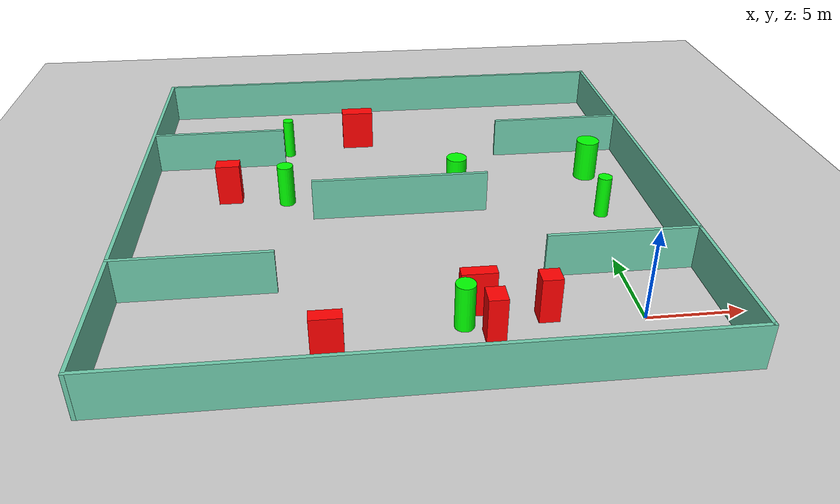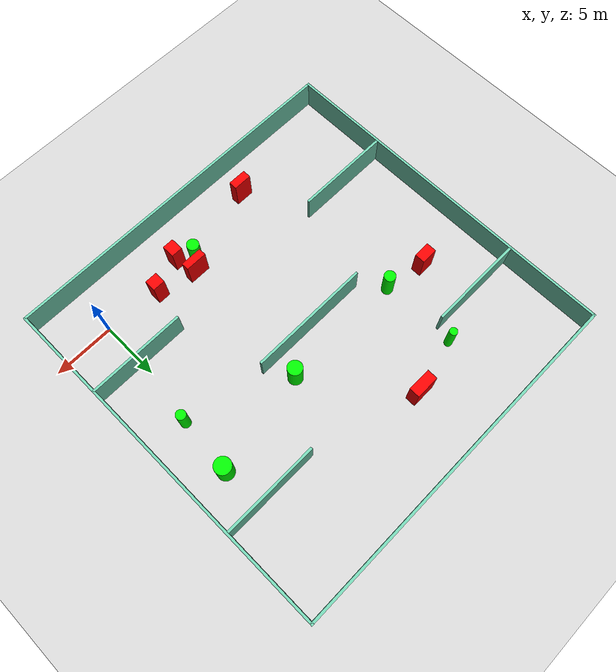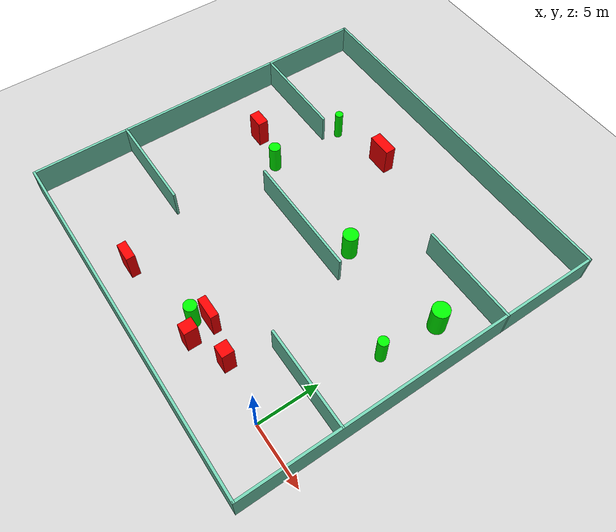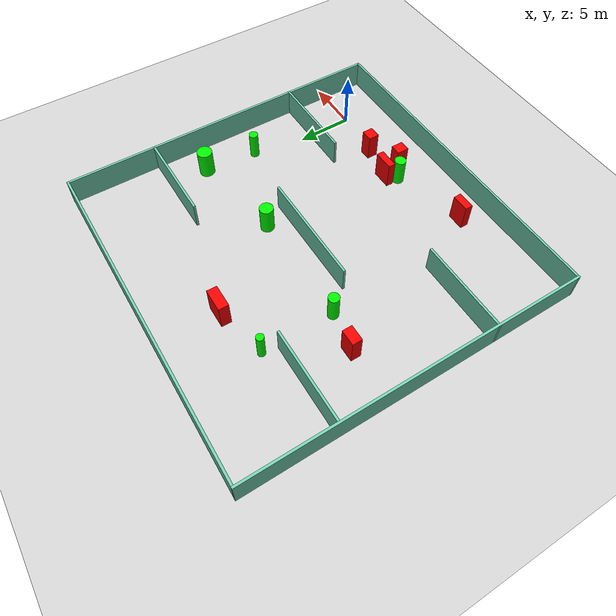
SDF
<sdf version="1.7">
 <world name="default">
  <light name="sun" type="directional">
   <pose>0 0 10 0 -0 0</pose>
   <diffuse>0.8 0.8 0.8 1</diffuse>
   <specular>0.2 0.2 0.2 1</specular>
   <attenuation>
    <range>1000</range>
    <constant>0.9</constant>
    <linear>0.01</linear>
    <quadratic>0.001</quadratic>
   </attenuation>
   <direction>-0.5 0.1 -0.9</direction>
   <spot><inner_angle>0</inner_angle><outer_angle>0</outer_angle><falloff>0</falloff></spot>
  </light>
  <model name="ground_plane">
   <static>1</static>
   <link name="link">
    <collision name="collision">
     <geometry><plane><normal>0 0 1</normal><size>100 100</size></plane></geometry>
     <surface>
      <contact><collide_bitmask>65535</collide_bitmask></contact>
      <friction><ode><mu>100</mu><mu2>50</mu2></ode></friction>
     </surface>
    </collision>
    <visual name="visual">
     <cast_shadows>0</cast_shadows>
     <geometry><plane><normal>0 0 1</normal><size>100 100</size></plane></geometry>
     <material>
      <script><uri>file://media/materials/scripts/gazebo.material</uri><name>Gazebo/Grey</name></script>
     </material>
    </visual>
   </link>
  </model>
  <gravity>0 0 -9.8</gravity>
  <magnetic_field>6e-06 2.3e-05 -4.2e-05</magnetic_field>
  <atmosphere type="adiabatic"/>
  <physics type="ode">
   <max_step_size>0.001</max_step_size>
   <real_time_factor>1</real_time_factor>
   <real_time_update_rate>1000</real_time_update_rate>
  </physics>
  <scene><ambient>0.4 0.4 0.4 1</ambient><background>0.7 0.7 0.7 1</background><shadows>1</shadows></scene>
  <spherical_coordinates>
   <surface_model>EARTH_WGS84</surface_model>
   <latitude_deg>0</latitude_deg>
   <longitude_deg>0</longitude_deg>
   <elevation>0</elevation>
   <heading_deg>0</heading_deg>
  </spherical_coordinates>
  <model name="my_base_walls">
   <link name="Wall_10">
    <collision name="Wall_10_Collision">
     <geometry><box><size>8.2 0.2 2.5</size></box></geometry>
     <pose>0 0 1.25 0 -0 0</pose>
    </collision>
    <visual name="Wall_10_Visual">
     <pose>0 0 1.25 0 -0 0</pose>
     <geometry><box><size>8.2 0.2 2.5</size></box></geometry>
     <material>
      <script><uri>file://media/materials/scripts/gazebo.material</uri><name>Gazebo/Grey</name></script>
      <ambient>0.435294 0.796078 0.67451 1</ambient>
     </material>
     <meta><layer>0</layer></meta>
    </visual>
    <pose>-11 -7 0 0 -0 0</pose>
   </link>
   <link name="Wall_12">
    <collision name="Wall_12_Collision">
     <geometry><box><size>8.2 0.2 2.5</size></box></geometry>
     <pose>0 0 1.25 0 -0 0</pose>
    </collision>
    <visual name="Wall_12_Visual">
     <pose>0 0 1.25 0 -0 0</pose>
     <geometry><box><size>8.2 0.2 2.5</size></box></geometry>
     <material>
      <script><uri>file://media/materials/scripts/gazebo.material</uri><name>Gazebo/Grey</name></script>
      <ambient>0.435294 0.796078 0.67451 1</ambient>
     </material>
     <meta><layer>0</layer></meta>
    </visual>
    <pose>-11 7 0 0 -0 0</pose>
   </link>
   <link name="Wall_14">
    <collision name="Wall_14_Collision">
     <geometry><box><size>8.2 0.2 2.5</size></box></geometry>
     <pose>0 0 1.25 0 -0 0</pose>
    </collision>
    <visual name="Wall_14_Visual">
     <pose>0 0 1.25 0 -0 0</pose>
     <geometry><box><size>8.2 0.2 2.5</size></box></geometry>
     <material>
      <script><uri>file://media/materials/scripts/gazebo.material</uri><name>Gazebo/Grey</name></script>
      <ambient>0.435294 0.796078 0.67451 1</ambient>
     </material>
     <meta><layer>0</layer></meta>
    </visual>
    <pose>11 7 0 0 -0 3.14159</pose>
   </link>
   <link name="Wall_16">
    <collision name="Wall_16_Collision">
     <geometry><box><size>10.2 0.2 2.5</size></box></geometry>
     <pose>0 0 1.25 0 -0 0</pose>
    </collision>
    <visual name="Wall_16_Visual">
     <pose>0 0 1.25 0 -0 0</pose>
     <geometry><box><size>10.2 0.2 2.5</size></box></geometry>
     <material>
      <script><uri>file://media/materials/scripts/gazebo.material</uri><name>Gazebo/Grey</name></script>
      <ambient>0.435294 0.796078 0.67451 1</ambient>
     </material>
     <meta><layer>0</layer></meta>
    </visual>
    <pose>0 0 0 0 -0 3.14159</pose>
   </link>
   <link name="Wall_2">
    <collision name="Wall_2_Collision">
     <geometry><box><size>30.2 0.2 2.5</size></box></geometry>
     <pose>0 0 1.25 0 -0 0</pose>
    </collision>
    <visual name="Wall_2_Visual">
     <pose>0 0 1.25 0 -0 0</pose>
     <geometry><box><size>30.2 0.2 2.5</size></box></geometry>
     <material>
      <script><uri>file://media/materials/scripts/gazebo.material</uri><name>Gazebo/Grey</name></script>
      <ambient>0.435294 0.796078 0.67451 1</ambient>
     </material>
     <meta><layer>0</layer></meta>
    </visual>
    <pose>0 -15 0 0 -0 3.14159</pose>
   </link>
   <link name="Wall_3">
    <collision name="Wall_3_Collision">
     <geometry><box><size>30.2 0.2 2.5</size></box></geometry>
     <pose>0 0 1.25 0 -0 0</pose>
    </collision>
    <visual name="Wall_3_Visual">
     <pose>0 0 1.25 0 -0 0</pose>
     <geometry><box><size>30.2 0.2 2.5</size></box></geometry>
     <material>
      <script><uri>file://media/materials/scripts/gazebo.material</uri><name>Gazebo/Grey</name></script>
      <ambient>0.435294 0.796078 0.67451 1</ambient>
     </material>
     <meta><layer>0</layer></meta>
    </visual>
    <pose>-15 0 0 0 -0 1.5708</pose>
   </link>
   <link name="Wall_4">
    <collision name="Wall_4_Collision">
     <geometry><box><size>30.2 0.2 2.5</size></box></geometry>
     <pose>0 0 1.25 0 -0 0</pose>
    </collision>
    <visual name="Wall_4_Visual">
     <pose>0 0 1.25 0 -0 0</pose>
     <geometry><box><size>30.2 0.2 2.5</size></box></geometry>
     <material>
      <script><uri>file://media/materials/scripts/gazebo.material</uri><name>Gazebo/Grey</name></script>
      <ambient>0.435294 0.796078 0.67451 1</ambient>
     </material>
     <meta><layer>0</layer></meta>
    </visual>
    <pose>0 15 0 0 -0 0</pose>
   </link>
   <link name="Wall_6">
    <collision name="Wall_6_Collision">
     <geometry><box><size>30.2 0.2 2.5</size></box></geometry>
     <pose>0 0 1.25 0 -0 0</pose>
    </collision>
    <visual name="Wall_6_Visual">
     <pose>0 0 1.25 0 -0 0</pose>
     <geometry><box><size>30.2 0.2 2.5</size></box></geometry>
     <material>
      <script><uri>file://media/materials/scripts/gazebo.material</uri><name>Gazebo/Grey</name></script>
      <ambient>0.435294 0.796078 0.67451 1</ambient>
     </material>
     <meta><layer>0</layer></meta>
    </visual>
    <pose>15 0 0 0 -0 1.5708</pose>
   </link>
   <link name="Wall_8">
    <collision name="Wall_8_Collision">
     <geometry><box><size>8.2 0.2 2.5</size></box></geometry>
     <pose>0 0 1.25 0 -0 0</pose>
    </collision>
    <visual name="Wall_8_Visual">
     <pose>0 0 1.25 0 -0 0</pose>
     <geometry><box><size>8.2 0.2 2.5</size></box></geometry>
     <material>
      <script><uri>file://media/materials/scripts/gazebo.material</uri><name>Gazebo/Grey</name></script>
      <ambient>0.435294 0.796078 0.67451 1</ambient>
     </material>
     <meta><layer>0</layer></meta>
    </visual>
    <pose>11 -7 0 0 -0 3.14159</pose>
   </link>
   <static>1</static>
   <pose>-11 11 0 0 -0 0</pose>
  </model>
  <model name="cylinder1">
   <static>1</static>
   <link name="link">
    <inertial>
     <mass>1</mass>
     <inertia><ixx>0.5</ixx><ixy>0</ixy><ixz>0</ixz><iyy>0.5</iyy><iyz>0</iyz><izz>1</izz></inertia>
    </inertial>
    <collision name="collision">
     <geometry><cylinder><radius>0.32610897069597844</radius><length>2.5</length></cylinder></geometry>
    </collision>
    <visual name="visual">
     <geometry><cylinder><radius>0.32610897069597844</radius><length>2.5</length></cylinder></geometry>
     <material>
      <ambient>0 1 0 1</ambient>
      <diffuse>0 1 0 1</diffuse>
      <specular>0.1 0.1 0.1 1</specular>
      <emissive>0 0 0 0</emissive>
     </material>
    </visual>
   </link>
   <pose>-17.642515087117545 19.373491914018626 1.25 0 0 0</pose>
  </model>
  <model name="cylinder2">
   <static>1</static>
   <link name="link">
    <inertial>
     <mass>1</mass>
     <inertia><ixx>0.5</ixx><ixy>0</ixy><ixz>0</ixz><iyy>0.5</iyy><iyz>0</iyz><izz>1</izz></inertia>
    </inertial>
    <collision name="collision">
     <geometry><cylinder><radius>0.5052027411489557</radius><length>2.5</length></cylinder></geometry>
    </collision>
    <visual name="visual">
     <geometry><cylinder><radius>0.5052027411489557</radius><length>2.5</length></cylinder></geometry>
     <material>
      <ambient>0 1 0 1</ambient>
      <diffuse>0 1 0 1</diffuse>
      <specular>0.1 0.1 0.1 1</specular>
      <emissive>0 0 0 0</emissive>
     </material>
    </visual>
   </link>
   <pose>-8.894063770550094 0.3166650774663 1.25 0 0 0</pose>
  </model>
  <model name="cylinder3">
   <static>1</static>
   <link name="link">
    <inertial>
     <mass>1</mass>
     <inertia><ixx>0.5</ixx><ixy>0</ixy><ixz>0</ixz><iyy>0.5</iyy><iyz>0</iyz><izz>1</izz></inertia>
    </inertial>
    <collision name="collision">
     <geometry><cylinder><radius>0.4726106299703653</radius><length>2.5</length></cylinder></geometry>
    </collision>
    <visual name="visual">
     <geometry><cylinder><radius>0.4726106299703653</radius><length>2.5</length></cylinder></geometry>
     <material>
      <ambient>0 1 0 1</ambient>
      <diffuse>0 1 0 1</diffuse>
      <specular>0.1 0.1 0.1 1</specular>
      <emissive>0 0 0 0</emissive>
     </material>
    </visual>
   </link>
   <pose>-17.658676734686917 12.996273460654924 1.25 0 0 0</pose>
  </model>
  <model name="cylinder4">
   <static>1</static>
   <link name="link">
    <inertial>
     <mass>1</mass>
     <inertia><ixx>0.5</ixx><ixy>0</ixy><ixz>0</ixz><iyy>0.5</iyy><iyz>0</iyz><izz>1</izz></inertia>
    </inertial>
    <collision name="collision">
     <geometry><cylinder><radius>0.40601296018954497</radius><length>2.5</length></cylinder></geometry>
    </collision>
    <visual name="visual">
     <geometry><cylinder><radius>0.40601296018954497</radius><length>2.5</length></cylinder></geometry>
     <material>
      <ambient>0 1 0 1</ambient>
      <diffuse>0 1 0 1</diffuse>
      <specular>0.1 0.1 0.1 1</specular>
      <emissive>0 0 0 0</emissive>
     </material>
    </visual>
   </link>
   <pose>0.7501896161999753 9.72776076778203 1.25 0 0 0</pose>
  </model>
  <model name="cylinder5">
   <static>1</static>
   <link name="link">
    <inertial>
     <mass>1</mass>
     <inertia><ixx>0.5</ixx><ixy>0</ixy><ixz>0</ixz><iyy>0.5</iyy><iyz>0</iyz><izz>1</izz></inertia>
    </inertial>
    <collision name="collision">
     <geometry><cylinder><radius>0.6813596432607819</radius><length>2.5</length></cylinder></geometry>
    </collision>
    <visual name="visual">
     <geometry><cylinder><radius>0.6813596432607819</radius><length>2.5</length></cylinder></geometry>
     <material>
      <ambient>0 1 0 1</ambient>
      <diffuse>0 1 0 1</diffuse>
      <specular>0.1 0.1 0.1 1</specular>
      <emissive>0 0 0 0</emissive>
     </material>
    </visual>
   </link>
   <pose>1.1193753028385771 14.480464474219488 1.25 0 0 0</pose>
  </model>
  <model name="cylinder6">
   <static>1</static>
   <link name="link">
    <inertial>
     <mass>1</mass>
     <inertia><ixx>0.5</ixx><ixy>0</ixy><ixz>0</ixz><iyy>0.5</iyy><iyz>0</iyz><izz>1</izz></inertia>
    </inertial>
    <collision name="collision">
     <geometry><cylinder><radius>0.6042554468545702</radius><length>2.5</length></cylinder></geometry>
    </collision>
    <visual name="visual">
     <geometry><cylinder><radius>0.6042554468545702</radius><length>2.5</length></cylinder></geometry>
     <material>
      <ambient>0 1 0 1</ambient>
      <diffuse>0 1 0 1</diffuse>
      <specular>0.1 0.1 0.1 1</specular>
      <emissive>0 0 0 0</emissive>
     </material>
    </visual>
   </link>
   <pose>-7.405057811477466 13.023718609426513 1.25 0 0 0</pose>
  </model>
  <model name="box1">
   <static>1</static>
   <link name="link">
    <inertial>
     <mass>1</mass>
     <inertia><ixx>0.083</ixx><ixy>0</ixy><ixz>0</ixz><iyy>0.083</iyy><iyz>0</iyz><izz>0.083</izz></inertia>
    </inertial>
    <collision name="collision">
     <geometry><box><size>1.3825765598863873 0.8701143369122021 2.5</size></box></geometry>
    </collision>
    <visual name="visual">
     <geometry><box><size>1.3825765598863873 0.8701143369122021 2.5</size></box></geometry>
     <material>
      <ambient>1 0 0 1</ambient>
      <diffuse>1 0 0 1</diffuse>
      <specular>0.1 0.1 0.1 1</specular>
      <emissive>0 0 0 0</emissive>
     </material>
    </visual>
    <sensor name="my_contact" type="contact">
     <contact><collision>box_collision</collision><topic>__default_topic__</topic></contact>
    </sensor>
   </link>
   <pose>-21.03539174677135 13.620077005187174 1.25 0 0 0</pose>
  </model>
  <model name="box2">
   <static>1</static>
   <link name="link">
    <inertial>
     <mass>1</mass>
     <inertia><ixx>0.083</ixx><ixy>0</ixy><ixz>0</ixz><iyy>0.083</iyy><iyz>0</iyz><izz>0.083</izz></inertia>
    </inertial>
    <collision name="collision">
     <geometry><box><size>0.9585685999139649 1.0804906631167752 2.5</size></box></geometry>
    </collision>
    <visual name="visual">
     <geometry><box><size>0.9585685999139649 1.0804906631167752 2.5</size></box></geometry>
     <material>
      <ambient>1 0 0 1</ambient>
      <diffuse>1 0 0 1</diffuse>
      <specular>0.1 0.1 0.1 1</specular>
      <emissive>0 0 0 0</emissive>
     </material>
    </visual>
    <sensor name="my_contact" type="contact">
     <contact><collision>box_collision</collision><topic>__default_topic__</topic></contact>
    </sensor>
   </link>
   <pose>-7.60784119080701 -0.588669406346281 1.25 0 0 0</pose>
  </model>
  <model name="box3">
   <static>1</static>
   <link name="link">
    <inertial>
     <mass>1</mass>
     <inertia><ixx>0.083</ixx><ixy>0</ixy><ixz>0</ixz><iyy>0.083</iyy><iyz>0</iyz><izz>0.083</izz></inertia>
    </inertial>
    <collision name="collision">
     <geometry><box><size>1.8084688779079292 0.6401002387384891 2.5</size></box></geometry>
    </collision>
    <visual name="visual">
     <geometry><box><size>1.8084688779079292 0.6401002387384891 2.5</size></box></geometry>
     <material>
      <ambient>1 0 0 1</ambient>
      <diffuse>1 0 0 1</diffuse>
      <specular>0.1 0.1 0.1 1</specular>
      <emissive>0 0 0 0</emissive>
     </material>
    </visual>
    <sensor name="my_contact" type="contact">
     <contact><collision>box_collision</collision><topic>__default_topic__</topic></contact>
    </sensor>
   </link>
   <pose>-8.107334947724773 1.2995336412661107 1.25 0 0 0</pose>
  </model>
  <model name="box4">
   <static>1</static>
   <link name="link">
    <inertial>
     <mass>1</mass>
     <inertia><ixx>0.083</ixx><ixy>0</ixy><ixz>0</ixz><iyy>0.083</iyy><iyz>0</iyz><izz>0.083</izz></inertia>
    </inertial>
    <collision name="collision">
     <geometry><box><size>1.0484427159303253 0.9660383049588865 2.5</size></box></geometry>
    </collision>
    <visual name="visual">
     <geometry><box><size>1.0484427159303253 0.9660383049588865 2.5</size></box></geometry>
     <material>
      <ambient>1 0 0 1</ambient>
      <diffuse>1 0 0 1</diffuse>
      <specular>0.1 0.1 0.1 1</specular>
      <emissive>0 0 0 0</emissive>
     </material>
    </visual>
    <sensor name="my_contact" type="contact">
     <contact><collision>box_collision</collision><topic>__default_topic__</topic></contact>
    </sensor>
   </link>
   <pose>-4.766132102006258 0.6134721360681885 1.25 0 0 0</pose>
  </model>
  <model name="box5">
   <static>1</static>
   <link name="link">
    <inertial>
     <mass>1</mass>
     <inertia><ixx>0.083</ixx><ixy>0</ixy><ixz>0</ixz><iyy>0.083</iyy><iyz>0</iyz><izz>0.083</izz></inertia>
    </inertial>
    <collision name="collision">
     <geometry><box><size>1.5532956096008388 0.7074425823597844 2.5</size></box></geometry>
    </collision>
    <visual name="visual">
     <geometry><box><size>1.5532956096008388 0.7074425823597844 2.5</size></box></geometry>
     <material>
      <ambient>1 0 0 1</ambient>
      <diffuse>1 0 0 1</diffuse>
      <specular>0.1 0.1 0.1 1</specular>
      <emissive>0 0 0 0</emissive>
     </material>
    </visual>
    <sensor name="my_contact" type="contact">
     <contact><collision>box_collision</collision><topic>__default_topic__</topic></contact>
    </sensor>
   </link>
   <pose>-15.457708322947944 -1.322465565436874 1.25 0 0 0</pose>
  </model>
  <model name="box6">
   <static>1</static>
   <link name="link">
    <inertial>
     <mass>1</mass>
     <inertia><ixx>0.083</ixx><ixy>0</ixy><ixz>0</ixz><iyy>0.083</iyy><iyz>0</iyz><izz>0.083</izz></inertia>
    </inertial>
    <collision name="collision">
     <geometry><box><size>1.986145244466096 0.8805042017446534 2.5</size></box></geometry>
    </collision>
    <visual name="visual">
     <geometry><box><size>1.986145244466096 0.8805042017446534 2.5</size></box></geometry>
     <material>
      <ambient>1 0 0 1</ambient>
      <diffuse>1 0 0 1</diffuse>
      <specular>0.1 0.1 0.1 1</specular>
      <emissive>0 0 0 0</emissive>
     </material>
    </visual>
    <sensor name="my_contact" type="contact">
     <contact><collision>box_collision</collision><topic>__default_topic__</topic></contact>
    </sensor>
   </link>
   <pose>-13.073747137237262 20.4429630119372 1.25 0 0 0</pose>
  </model>
 </world>
</sdf>
